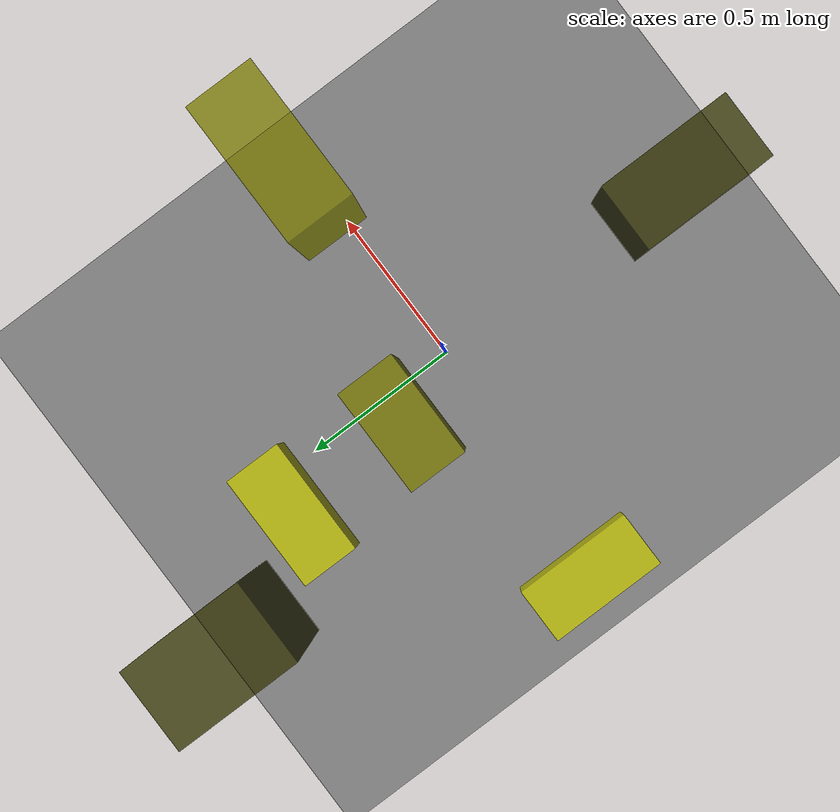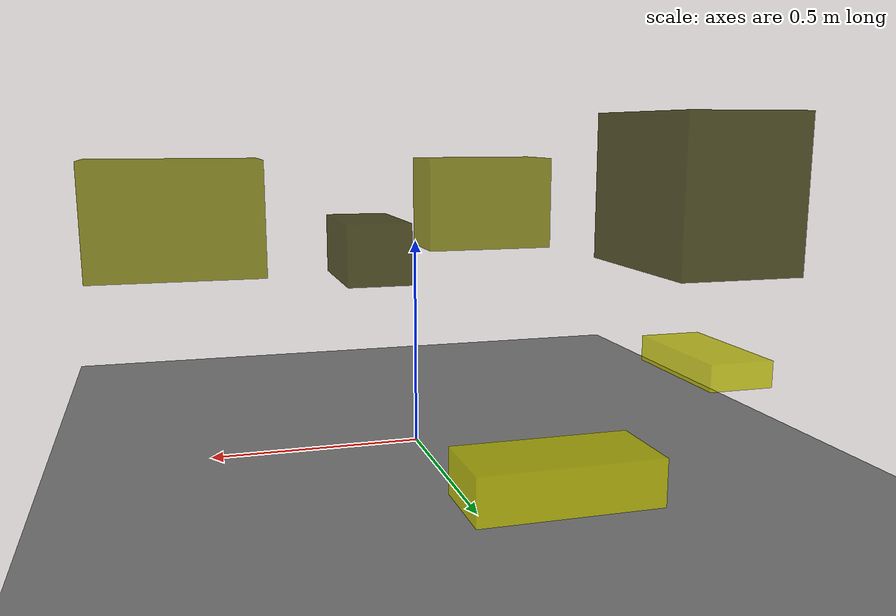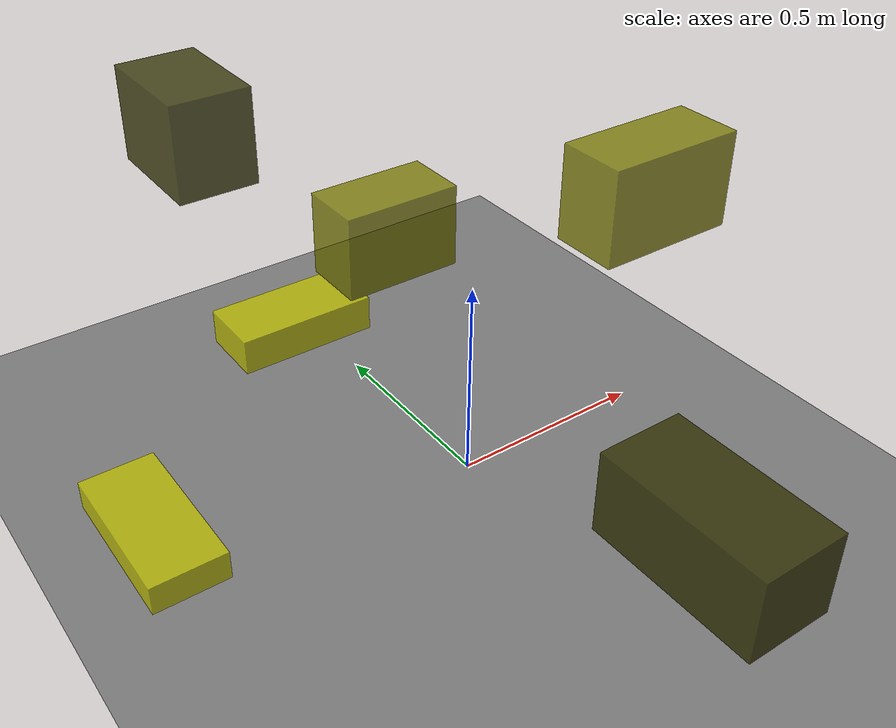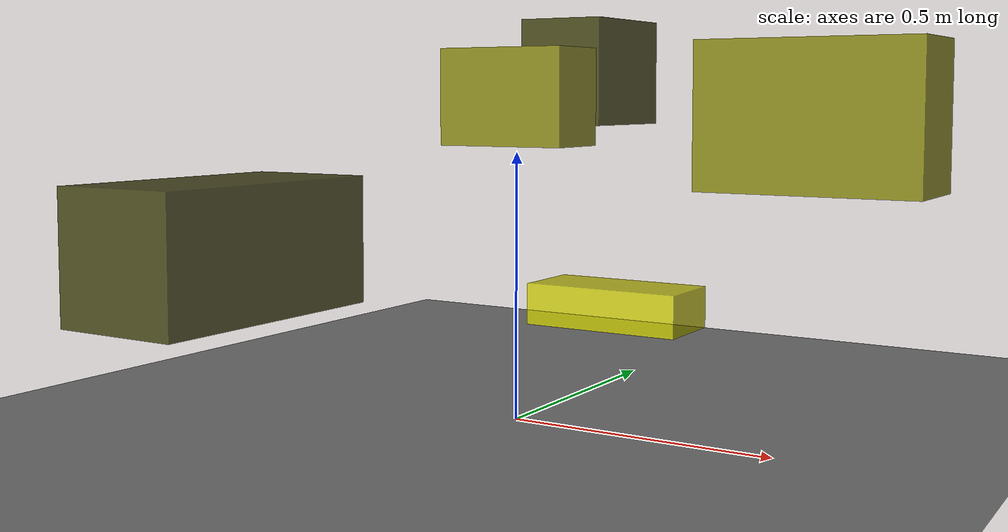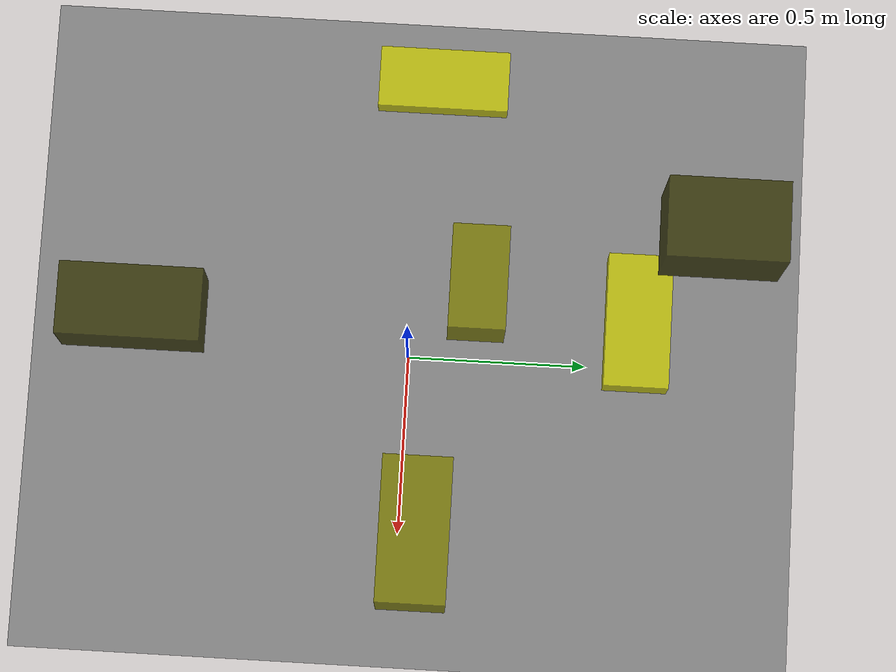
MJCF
<?xml version="1.0"?>
<mujoco model="obstacle_scene">
  <compiler angle="radian" coordinate="local"/>
  <option timestep="0.001" gravity="0 0 -9.81"/>

  <asset>
    <material name="obstacle_mat" rgba="0.8 0.8 0.0 0.8"/>
    <material name="ground_mat" rgba="0.5 0.5 0.5 1"/>
  </asset>

  <worldbody>
    <!-- Ground plane -->
    <geom name="ground" type="plane" size="3 3 0.1" material="ground_mat"/>

    <!-- Obstacles -->
    <body name="obstacle_0" pos="-0.029726 -0.742670 0.395457">
      <geom name="obs_0" type="box" size="0.098237 0.192655 0.093199" rgba="0.2 0.2 0.0 0.8"/>
    </body>
    <body name="obstacle_1" pos="0.556109 0.049861 0.571530">
      <geom name="obs_1" type="box" size="0.189358 0.090675 0.126896" rgba="0.5 0.5 0.0 0.8"/>
    </body>
    <body name="obstacle_2" pos="-0.762691 0.059477 0.169306">
      <geom name="obs_2" type="box" size="0.085123 0.181329 0.034222" rgba="0.8 0.8 0.0 0.8"/>
    </body>
    <body name="obstacle_3" pos="-0.275520 0.811587 0.662833">
      <geom name="obs_3" type="box" size="0.105890 0.157139 0.127278" rgba="0.2 0.2 0.0 0.8"/>
    </body>
    <body name="obstacle_4" pos="-0.106572 0.181179 0.603177">
      <geom name="obs_4" type="box" size="0.136905 0.074608 0.097316" rgba="0.5 0.5 0.0 0.8"/>
    </body>
    <body name="obstacle_5" pos="-0.113108 0.636048 0.117626">
      <geom name="obs_5" type="box" size="0.186724 0.089497 0.048244" rgba="0.8 0.8 0.0 0.8"/>
    </body>
  </worldbody>
</mujoco>
